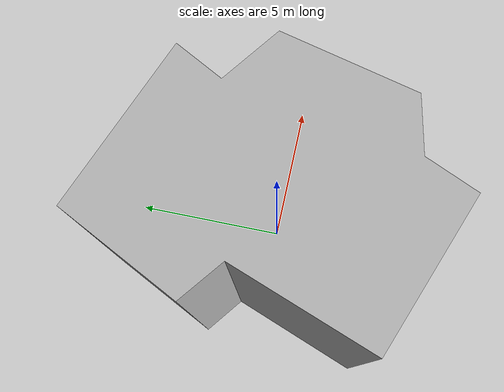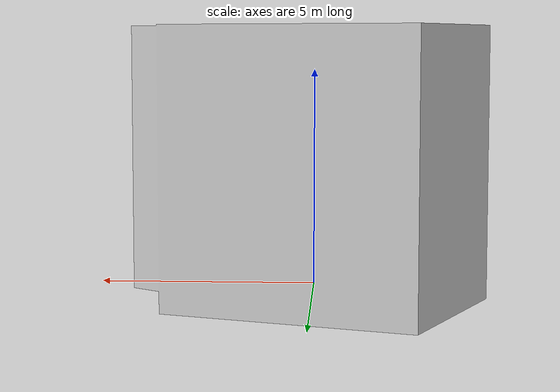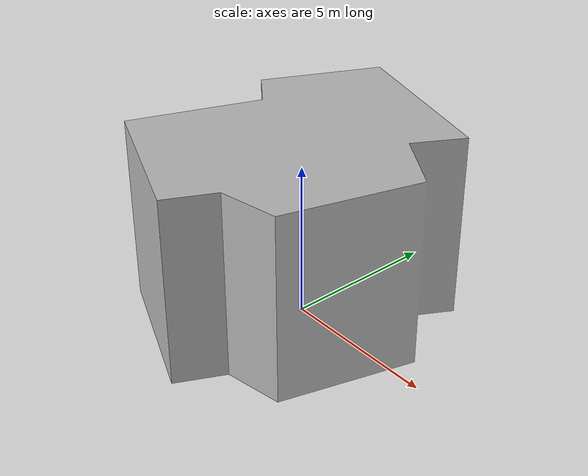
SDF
<?xml version="1.0" ?>
<sdf version="1.7">
  <model name="building_3610_assumed_a_casa">
    <static>true</static>
    <link name="building_link">
      <visual name="building_visual">
        <geometry>
          <mesh>
            <uri>model://building_3610_assumed_a_casa/meshes/construction_3610_assumed_A_Casa_h6m.obj</uri>
          </mesh>
        </geometry>
      </visual>
    <collision name="building_collision">
      <geometry>
        <mesh>
          <uri>model://building_3610_assumed_a_casa/meshes/construction_3610_assumed_A_Casa_h6m.obj</uri>
        </mesh>
      </geometry>
    </collision>
    </link>
  </model>
</sdf>
